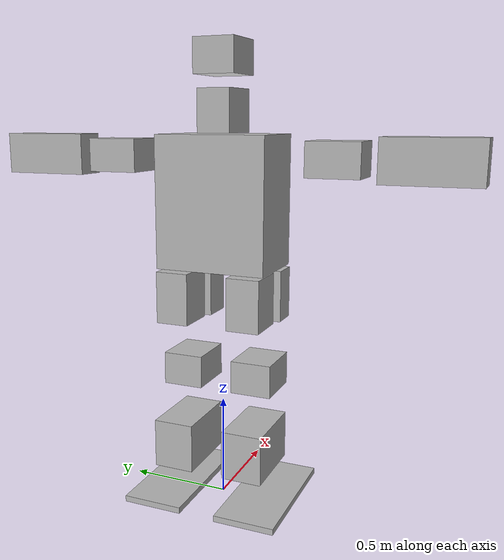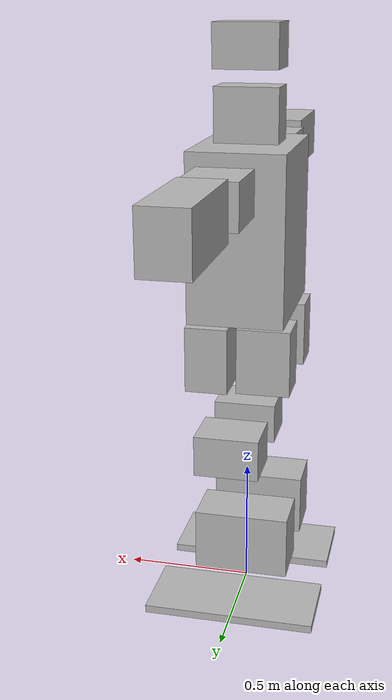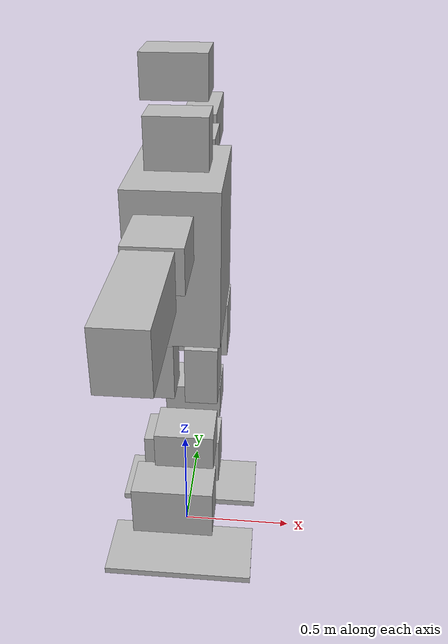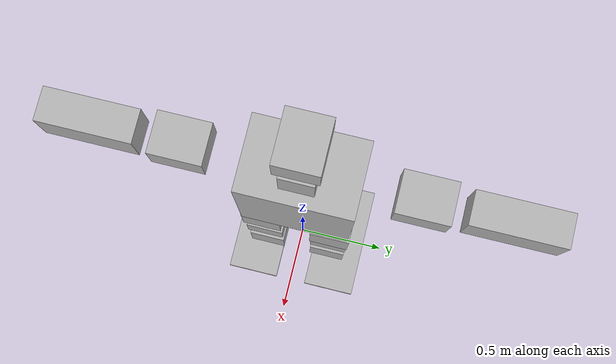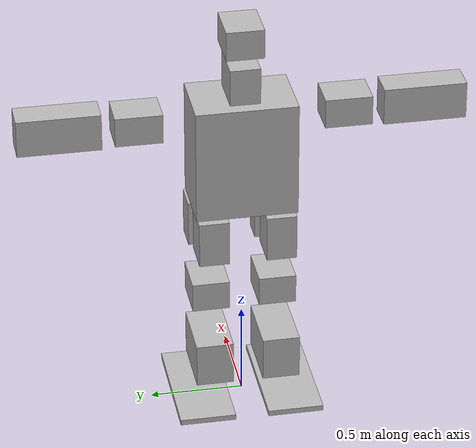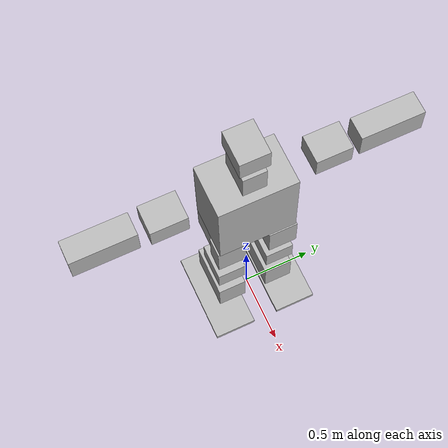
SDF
<?xml version='1.0'?>
<sdf version='1.4'>
	<model name="jimmy">
		<static>false</static>

		<link name="torso">
			<pose>0 0 1.5 0 0 0</pose>
			<self_collide>true</self_collide>
			<!-- Inertia -->
			<inertial>
				<mass>2.0</mass>
				<pose>0 0 -0.3 0 0 0</pose>
				<inertia>
					<ixx>0.08775</ixx>
					<iyy>0.702</iyy>
					<izz>0.11475</izz>
				</inertia>
			</inertial>

			<!-- Collision -->
			<collision name='collision'>
				<pose>0 0 0 0 0 0</pose>
				<geometry>
					<box>
						<size>0.36 0.54 0.63</size>
					</box>
				</geometry>
				<surface>
	            <friction>
	              <ode>
	                <mu>0.5</mu>
	                <mu2>0.2</mu2>
	                <fdir1>1.0 0 0</fdir1>
	                <slip1>0</slip1>
	                <slip2>0</slip2>
	              </ode>
	            </friction>
	            <bounce>
	              <restitution_coefficient>0</restitution_coefficient>
	              <threshold>1000000.0</threshold>
	            </bounce>
	            <contact>
	              <ode>
	                <soft_cfm>0</soft_cfm>
	                <kp>1e15</kp>
	                <kd>1e13</kd>
	                <max_vel>100.0</max_vel>
	                <min_depth>0.0001</min_depth>
	              </ode>
	            </contact>
	          </surface>
			</collision>

			<!-- Parts -->

			<visual name='visual'>
				<pose>0 0 0 0 0 0</pose>
				<geometry>
					<box>
						<size>0.36 0.54 0.63</size>
					</box>
				</geometry>
			</visual>
		</link>

		<!-- Left arm -->
		<link name="left_shoulder_pitch">
			<pose>0 0.35 1.71 0 0 0</pose>
		</link>

		<link name="left_shoulder_roll">
			<pose>0 0.55 1.71 0 0 0</pose>
			<self_collide>true</self_collide>
			<inertial>
				<mass>0.105</mass>
				<pose>0 0 0 0 0 0</pose>
				<inertia>
					<ixx>0.003587501</ixx>
					<iyy>0.001624001</iyy>
					<izz>0.002411501</izz>
				</inertia>
			</inertial>
			<collision name='collision'>
				<pose>0 0 0 0 0 0</pose>
				<geometry>
					<box>
						<size>0.2 0.25 0.16</size>
					</box>
				</geometry>
				<surface>
	            <friction>
	              <ode>
	                <mu>0.5</mu>
	                <mu2>0.2</mu2>
	                <fdir1>1.0 0 0</fdir1>
	                <slip1>0</slip1>
	                <slip2>0</slip2>
	              </ode>
	            </friction>
	            <bounce>
	              <restitution_coefficient>0</restitution_coefficient>
	              <threshold>1000000.0</threshold>
	            </bounce>
	            <contact>
	              <ode>
	                <soft_cfm>0</soft_cfm>
	                <kp>1e15</kp>
	                <kd>1e13</kd>
	                <max_vel>100.0</max_vel>
	                <min_depth>0.0001</min_depth>
	              </ode>
	            </contact>
	          </surface>
			</collision>

			<visual name='visual'>
				<pose>0 0 0 0 0 0</pose>
				<geometry>
					<box>
						<size>0.2 0.25 0.16</size>
					</box>
				</geometry>
			</visual>
		</link>
		<link name="left_elbow">
			<pose>0 0.96 1.71 0 0 0</pose>
			<self_collide>true</self_collide>
			<inertial>
				<mass>0.1</mass>
				<pose>0 -0.2 0 0 0 0</pose>
				<inertia>
					<ixx>0.007175002</ixx>
					<iyy>0.003248002</iyy>
					<izz>0.004823002</izz>
				</inertia>
			</inertial>
			<collision name='collision'>
				<pose>0 0 0 0 0 0</pose>
				<geometry>
					<box>
						<size>0.16 0.44 0.2</size>
					</box>
				</geometry>
				<surface>
	            <friction>
	              <ode>
	                <mu>0.5</mu>
	                <mu2>0.2</mu2>
	                <fdir1>1.0 0 0</fdir1>
	                <slip1>0</slip1>
	                <slip2>0</slip2>
	              </ode>
	            </friction>
	            <bounce>
	              <restitution_coefficient>0</restitution_coefficient>
	              <threshold>1000000.0</threshold>
	            </bounce>
	            <contact>
	              <ode>
	                <soft_cfm>0</soft_cfm>
	                <kp>1e15</kp>
	                <kd>1e13</kd>
	                <max_vel>100.0</max_vel>
	                <min_depth>0.0001</min_depth>
	              </ode>
	            </contact>
	          </surface>
			</collision>
			<visual name='visual'>
				<pose>0 0 0 0 0 0</pose>
				<geometry>
					<box>
						<size>0.16 0.44 0.2</size>
					</box>
				</geometry>
			</visual>
		</link>

		<!-- Right arm -->
		<link name="right_shoulder_pitch">
			<pose>0 -0.35 1.71 0 0 0</pose>
		</link>
		<link name="right_shoulder_roll">
			<pose>0 -0.55 1.71 0 0 0</pose>
			<self_collide>true</self_collide>
			<inertial>
				<mass>0.105</mass>
				<pose>0 0 0 0 0 0</pose>
				<inertia>
					<ixx>0.003587501</ixx>
					<iyy>0.001624001</iyy>
					<izz>0.002411501</izz>
				</inertia>
			</inertial>
			<collision name='collision'>
				<pose>0 0 0 0 0 0</pose>
				<geometry>
					<box>
						<size>0.2 0.25 0.16</size>
					</box>
				</geometry>
				<surface>
	            <friction>
	              <ode>
	                <mu>0.5</mu>
	                <mu2>0.2</mu2>
	                <fdir1>1.0 0 0</fdir1>
	                <slip1>0</slip1>
	                <slip2>0</slip2>
	              </ode>
	            </friction>
	            <bounce>
	              <restitution_coefficient>0</restitution_coefficient>
	              <threshold>1000000.0</threshold>
	            </bounce>
	            <contact>
	              <ode>
	                <soft_cfm>0</soft_cfm>
	                <kp>1e15</kp>
	                <kd>1e13</kd>
	                <max_vel>100.0</max_vel>
	                <min_depth>0.0001</min_depth>
	              </ode>
	            </contact>
	          </surface>
			</collision>
			<visual name='visual'>
				<pose>0 0 0 0 0 0</pose>
				<geometry>
					<box>
						<size>0.2 0.25 0.16</size>
					</box>
				</geometry>
			</visual>
		</link>

		<link name="right_elbow">
			<pose>0 -0.96 1.71 0 0 0</pose>
			<self_collide>true</self_collide>
			<inertial>
				<mass>0.1</mass>
				<pose>0 0.2 0 0 0 0</pose>
				<inertia>
					<ixx>0.007175002</ixx>
					<iyy>0.003248002</iyy>
					<izz>0.004823002</izz>
				</inertia>
			</inertial>
			<collision name='collision'>
				<pose>0 0 0 0 0 0</pose>
				<geometry>
					<box>
						<size>0.16 0.44 0.2</size>
					</box>
				</geometry>
				<surface>
	            <friction>
	              <ode>
	                <mu>0.5</mu>
	                <mu2>0.2</mu2>
	                <fdir1>1.0 0 0</fdir1>
	                <slip1>0</slip1>
	                <slip2>0</slip2>
	              </ode>
	            </friction>
	            <bounce>
	              <restitution_coefficient>0</restitution_coefficient>
	              <threshold>1000000.0</threshold>
	            </bounce>
	            <contact>
	              <ode>
	                <soft_cfm>0</soft_cfm>
	                <kp>1e15</kp>
	                <kd>1e13</kd>
	                <max_vel>100.0</max_vel>
	                <min_depth>0.0001</min_depth>
	              </ode>
	            </contact>
	          </surface>
			</collision>
			<visual name='visual'>
				<pose>0 0 0 0 0 0</pose>
				<geometry>
					<box>
						<size>0.16 0.44 0.2</size>
					</box>
				</geometry>
			</visual>
		</link>
		<link name="right_hip_yaw">
			<pose>0.06 -0.18 1.1 0 0 0</pose>
		</link>
		<link name="right_hip_roll">
			<pose>-0.105 -0.18 1.05 0 0 0</pose>
			<self_collide>true</self_collide>
			<inertial>
				<mass>0.07</mass>
				<pose>0 0 0 0 0 0</pose>
				<inertia>
					<ixx>0.002411501</ixx>
					<iyy>0.001624001</iyy>
					<izz>0.003587501</izz>
				</inertia>
			</inertial>
			<collision name='collision'>
				<pose>0 0 0 0 0 0</pose>
				<geometry>
					<box>
						<size>0.2 0.16 0.25</size>
					</box>
				</geometry>
				<surface>
	            <friction>
	              <ode>
	                <mu>0.5</mu>
	                <mu2>0.2</mu2>
	                <fdir1>1.0 0 0</fdir1>
	                <slip1>0</slip1>
	                <slip2>0</slip2>
	              </ode>
	            </friction>
	            <bounce>
	              <restitution_coefficient>0</restitution_coefficient>
	              <threshold>1000000.0</threshold>
	            </bounce>
	            <contact>
	              <ode>
	                <soft_cfm>0</soft_cfm>
	                <kp>1e15</kp>
	                <kd>1e13</kd>
	                <max_vel>100.0</max_vel>
	                <min_depth>0.0001</min_depth>
	              </ode>
	            </contact>
	          </surface>
			</collision>
			<visual name='visual'>
				<pose>0 0 0 0 0 0</pose>
				<geometry>
					<box>
						<size>0.2 0.16 0.25</size>
					</box>
				</geometry>
			</visual>
		</link>

		<link name="right_hip_pitch">
			<pose>0.105 -0.18 1.05 0 0 0</pose>
			<self_collide>true</self_collide>
			<inertial>
				<mass>0.07</mass>
				<pose>0 0 0 0 0 0</pose>
				<inertia>
					<ixx>0.002411501</ixx>
					<iyy>0.001624001</iyy>
					<izz>0.003587501</izz>
				</inertia>
			</inertial>
			<collision name='collision'>
				<pose>0 0 0 0 0 0</pose>
				<geometry>
					<box>
						<size>0.16 0.2 0.25</size>
					</box>
				</geometry>
				<surface>
	            <friction>
	              <ode>
	                <mu>0.5</mu>
	                <mu2>0.2</mu2>
	                <fdir1>1.0 0 0</fdir1>
	                <slip1>0</slip1>
	                <slip2>0</slip2>
	              </ode>
	            </friction>
	            <bounce>
	              <restitution_coefficient>0</restitution_coefficient>
	              <threshold>1000000.0</threshold>
	            </bounce>
	            <contact>
	              <ode>
	                <soft_cfm>0</soft_cfm>
	                <kp>1e15</kp>
	                <kd>1e13</kd>
	                <max_vel>100.0</max_vel>
	                <min_depth>0.0001</min_depth>
	              </ode>
	            </contact>
	          </surface>
			</collision>
			<visual name='visual'>
				<pose>0 0 0 0 0 0</pose>
				<geometry>
					<box>
						<size>0.13 0.2 0.25</size>
					</box>
				</geometry>
			</visual>
		</link>
		<link name="right_femur">
			<pose>0.09 -0.18 0.86 0 0 0</pose>
			<self_collide>true</self_collide>
			<inertial>
				<mass>0.05</mass>
				<pose>0 0 0 0 0 0</pose>
				<inertia>
					<ixx>0.002411501</ixx>
					<iyy>0.001624001</iyy>
					<izz>0.003587501</izz>
				</inertia>
			</inertial>
		</link>
		<link name="right_knee">
			<pose>0.03 -0.18 0.66 0 0 0</pose>
			<self_collide>true</self_collide>
			<inertial>
				<mass>0.07</mass>
				<pose>0 0 0 0 0 0</pose>
				<inertia>
					<ixx>0.001624001</ixx>
					<iyy>0.002411501</iyy>
					<izz>0.003587501</izz>
				</inertia>
			</inertial>
			<collision name='collision'>
				<pose>0 0 0 0 0 0</pose>
				<geometry>
					<box>
						<size>0.25 0.2 0.13</size>
					</box>
				</geometry>
				<surface>
	            <friction>
	              <ode>
	                <mu>0.5</mu>
	                <mu2>0.2</mu2>
	                <fdir1>1.0 0 0</fdir1>
	                <slip1>0</slip1>
	                <slip2>0</slip2>
	              </ode>
	            </friction>
	            <bounce>
	              <restitution_coefficient>0</restitution_coefficient>
	              <threshold>1000000.0</threshold>
	            </bounce>
	            <contact>
	              <ode>
	                <soft_cfm>0</soft_cfm>
	                <kp>1e15</kp>
	                <kd>1e13</kd>
	                <max_vel>100.0</max_vel>
	                <min_depth>0.0001</min_depth>
	              </ode>
	            </contact>
	          </surface>
			</collision>
			<visual name='visual'>
				<pose>0 0 0 0 0 0</pose>
				<geometry>
					<box>
						<size>0.25 0.2 0.16</size>
					</box>
				</geometry>
			</visual>
		</link>

		<link name="right_ankle_pitch">
			<pose>-0.03 -0.18 0.3 0 0 0</pose>
			<inertial>
				<mass>0.07</mass>
				<pose>0 0 0 0 0 0</pose>
				<inertia>
					<ixx>0.002411501</ixx>
					<iyy>0.001624001</iyy>
					<izz>0.003587501</izz>
				</inertia>
			</inertial>
		</link>
		<link name="right_ankle_roll">
			<pose>-0.03 -0.18 0.3 0 0 0</pose>
			<self_collide>true</self_collide>
			<inertial>
				<mass>0.055</mass>
				<pose>0 0 0 0 0 0</pose>
				<inertia>
					<ixx>0.002411501</ixx>
					<iyy>0.001624001</iyy>
					<izz>0.003587501</izz>
				</inertia>
			</inertial>
			<collision name='collision'>
				<pose>0 0 0 0 0 0</pose>
				<geometry>
					<box>
						<size>0.36 0.2 0.24</size>
					</box>
				</geometry>
				<surface>
	            <friction>
	              <ode>
	                <mu>0.5</mu>
	                <mu2>0.2</mu2>
	                <fdir1>1.0 0 0</fdir1>
	                <slip1>0</slip1>
	                <slip2>0</slip2>
	              </ode>
	            </friction>
	            <bounce>
	              <restitution_coefficient>0</restitution_coefficient>
	              <threshold>1000000.0</threshold>
	            </bounce>
	            <contact>
	              <ode>
	                <soft_cfm>0</soft_cfm>
	                <kp>1e15</kp>
	                <kd>1e13</kd>
	                <max_vel>100.0</max_vel>
	                <min_depth>0.0001</min_depth>
	              </ode>
	            </contact>
	          </surface>
			</collision>
			<visual name='visual'>
				<pose>0 0 0 0 0 0</pose>
				<geometry>
					<box>
						<size>0.36 0.2 0.24</size>
					</box>
				</geometry>
			</visual>
		</link>
		<link name="right_foot">
			<pose>0 -0.24 0.03 0 0 0</pose>
			<self_collide>true</self_collide>
			<inertial>
				<mass>0.05</mass>
				<pose>0 0 0 0 0 0</pose>
				<inertia>
					<ixx>0.00037875</ixx>
					<iyy>0.00219</iyy>
					<izz>0.00181875</izz>
				</inertia>
			</inertial>
			<collision name='collision'>
				<pose>0 0 0 0 0 0</pose>
				<geometry>
					<box>
						<size>0.66 0.3 0.03</size>
					</box>
				</geometry>
				<surface>
	            <friction>
	              <ode>
	                <mu>0.5</mu>
	                <mu2>0.2</mu2>
	                <fdir1>1.0 0 0</fdir1>
	                <slip1>0</slip1>
	                <slip2>0</slip2>
	              </ode>
	            </friction>
	            <bounce>
	              <restitution_coefficient>0</restitution_coefficient>
	              <threshold>1000000.0</threshold>
	            </bounce>
	            <contact>
	              <ode>
	                <soft_cfm>0</soft_cfm>
	                <kp>1e15</kp>
	                <kd>1e13</kd>
	                <max_vel>100.0</max_vel>
	                <min_depth>0.0001</min_depth>
	              </ode>
	            </contact>
	          </surface>
			</collision>
			<visual name='visual'>
				<pose>0 0 0 0 0 0</pose>
				<geometry>
					<box>
						<size>0.66 0.3 0.03</size>
					</box>
				</geometry>
			</visual>
		</link>

		<link name="left_hip_yaw">
			<pose>0.06 0.18 1.1 0 0 0</pose>
		</link>
		<link name="left_hip_roll">
			<pose>-0.105 0.18 1.05 0 0 0</pose>
			<self_collide>true</self_collide>
			<inertial>
				<mass>0.07</mass>
				<pose>0 0 0 0 0 0</pose>
				<inertia>
					<ixx>0.002411501</ixx>
					<iyy>0.001624001</iyy>
					<izz>0.003587501</izz>
				</inertia>
			</inertial>
			<collision name='collision'>
				<pose>0 0 0 0 0 0</pose>
				<geometry>
					<box>
						<size>0.2 0.16 0.25</size>
					</box>
				</geometry>
				<surface>
	            <friction>
	              <ode>
	                <mu>0.5</mu>
	                <mu2>0.2</mu2>
	                <fdir1>1.0 0 0</fdir1>
	                <slip1>0</slip1>
	                <slip2>0</slip2>
	              </ode>
	            </friction>
	            <bounce>
	              <restitution_coefficient>0</restitution_coefficient>
	              <threshold>1000000.0</threshold>
	            </bounce>
	            <contact>
	              <ode>
	                <soft_cfm>0</soft_cfm>
	                <kp>1e15</kp>
	                <kd>1e13</kd>
	                <max_vel>100.0</max_vel>
	                <min_depth>0.0001</min_depth>
	              </ode>
	            </contact>
	          </surface>
			</collision>
			<visual name='visual'>
				<pose>0 0 0 0 0 0</pose>
				<geometry>
					<box>
						<size>0.2 0.16 0.25</size>
					</box>
				</geometry>
			</visual>
		</link>

		<link name="left_hip_pitch">
			<pose>0.105 0.18 1.05 0 0 0</pose>
			<self_collide>true</self_collide>
			<inertial>
				<mass>0.07</mass>
				<pose>0 0 0 0 0 0</pose>
				<inertia>
					<ixx>0.002411501</ixx>
					<iyy>0.001624001</iyy>
					<izz>0.003587501</izz>
				</inertia>
			</inertial>
			<collision name='collision'>
				<pose>0 0 0 0 0 0</pose>
				<geometry>
					<box>
						<size>0.16 0.2 0.25</size>
					</box>
				</geometry>
				<surface>
	            <friction>
	              <ode>
	                <mu>0.5</mu>
	                <mu2>0.2</mu2>
	                <fdir1>1.0 0 0</fdir1>
	                <slip1>0</slip1>
	                <slip2>0</slip2>
	              </ode>
	            </friction>
	            <bounce>
	              <restitution_coefficient>0</restitution_coefficient>
	              <threshold>1000000.0</threshold>
	            </bounce>
	            <contact>
	              <ode>
	                <soft_cfm>0</soft_cfm>
	                <kp>1e15</kp>
	                <kd>1e13</kd>
	                <max_vel>100.0</max_vel>
	                <min_depth>0.0001</min_depth>
	              </ode>
	            </contact>
	          </surface>
			</collision>
			<visual name='visual'>
				<pose>0 0 0 0 0 0</pose>
				<geometry>
					<box>
						<size>0.16 0.2 0.25</size>
					</box>
				</geometry>
			</visual>
		</link>
		<link name="left_femur">
			<pose>0.09 0.18 0.86 0 0 0</pose>
			<self_collide>true</self_collide>
			<inertial>
				<mass>0.05</mass>
				<pose>0 0 0 0 0 0</pose>
				<inertia>
					<ixx>0.002411501</ixx>
					<iyy>0.001624001</iyy>
					<izz>0.003587501</izz>
				</inertia>
			</inertial>
		</link>
		<link name="left_knee">
			<pose>0.03 0.18 0.66 0 0 0</pose>
			<self_collide>true</self_collide>
			<inertial>
				<mass>0.07</mass>
				<pose>0 0 0 0 0 0</pose>
				<inertia>
					<ixx>0.001624001</ixx>
					<iyy>0.002411501</iyy>
					<izz>0.003587501</izz>
				</inertia>
			</inertial>
			<collision name='collision'>
				<pose>0 0 0 0 0 0</pose>
				<geometry>
					<box>
						<size>0.25 0.2 0.16</size>
					</box>
				</geometry>
				<surface>
	            <friction>
	              <ode>
	                <mu>0.5</mu>
	                <mu2>0.2</mu2>
	                <fdir1>1.0 0 0</fdir1>
	                <slip1>0</slip1>
	                <slip2>0</slip2>
	              </ode>
	            </friction>
	            <bounce>
	              <restitution_coefficient>0</restitution_coefficient>
	              <threshold>1000000.0</threshold>
	            </bounce>
	            <contact>
	              <ode>
	                <soft_cfm>0</soft_cfm>
	                <kp>1e15</kp>
	                <kd>1e13</kd>
	                <max_vel>100.0</max_vel>
	                <min_depth>0.0001</min_depth>
	              </ode>
	            </contact>
	          </surface>
			</collision>
			<visual name='visual'>
				<pose>0 0 0 0 0 0</pose>
				<geometry>
					<box>
						<size>0.25 0.2 0.16</size>
					</box>
				</geometry>
			</visual>
		</link>

		<link name="left_ankle_pitch">
			<pose>-0.03 0.18 0.3 0 0 0</pose>
			<inertial>
				<mass>0.07</mass>
				<pose>0 0 0 0 0 0</pose>
				<inertia>
					<ixx>0.002411501</ixx>
					<iyy>0.001624001</iyy>
					<izz>0.003587501</izz>
				</inertia>
			</inertial>
		</link>
		<link name="left_ankle_roll">
			<pose>-0.03 0.18 0.3 0 0 0</pose>
			<self_collide>true</self_collide>
			<inertial>
				<mass>0.07</mass>
				<pose>0 0 0 0 0 0</pose>
				<inertia>
					<ixx>0.002411501</ixx>
					<iyy>0.001624001</iyy>
					<izz>0.003587501</izz>
				</inertia>
			</inertial>
			<collision name='collision'>
				<pose>0 0 0 0 0 0</pose>
				<geometry>
					<box>
						<size>0.36 0.2 0.24</size>
					</box>
				</geometry>
				<surface>
	            <friction>
	              <ode>
	                <mu>0.5</mu>
	                <mu2>0.2</mu2>
	                <fdir1>1.0 0 0</fdir1>
	                <slip1>0</slip1>
	                <slip2>0</slip2>
	              </ode>
	            </friction>
	            <bounce>
	              <restitution_coefficient>0</restitution_coefficient>
	              <threshold>1000000.0</threshold>
	            </bounce>
	            <contact>
	              <ode>
	                <soft_cfm>0</soft_cfm>
	                <kp>1e15</kp>
	                <kd>1e13</kd>
	                <max_vel>100.0</max_vel>
	                <min_depth>0.0001</min_depth>
	              </ode>
	            </contact>
	          </surface>
			</collision>
			<visual name='visual'>
				<pose>0 0 0 0 0 0</pose>
				<geometry>
					<box>
						<size>0.36 0.2 0.24</size>
					</box>
				</geometry>
			</visual>
		</link>

		<link name="left_foot">
			<pose>0 0.24 0.03 0 0 0</pose>
			<self_collide>true</self_collide>
			<inertial>
				<mass>0.05</mass>
				<pose>0 0 0 0 0 0</pose>
				<inertia>
					<ixx>0.00037875</ixx>
					<iyy>0.00219</iyy>
					<izz>0.00181875</izz>
				</inertia>
			</inertial>
			<collision name='collision'>
				<pose>0 0 0 0 0 0</pose>
				<geometry>
					<box>
						<size>0.66 0.3 0.03</size>
					</box>
				</geometry>
				<surface>
	            <friction>
	              <ode>
	                <mu>0.5</mu>
	                <mu2>0.2</mu2>
	                <fdir1>1.0 0 0</fdir1>
	                <slip1>0</slip1>
	                <slip2>0</slip2>
	              </ode>
	            </friction>
	            <bounce>
	              <restitution_coefficient>0</restitution_coefficient>
	              <threshold>1000000.0</threshold>
	            </bounce>
	            <contact>
	              <ode>
	                <soft_cfm>0</soft_cfm>
	                <kp>1e15</kp>
	                <kd>1e13</kd>
	                <max_vel>100.0</max_vel>
	                <min_depth>0.0001</min_depth>
	              </ode>
	            </contact>
	          </surface>
			</collision>
			<visual name='visual'>
				<pose>0 0 0 0 0 0</pose>
				<geometry>
					<box>
						<size>0.66 0.3 0.03</size>
					</box>
				</geometry>
			</visual>
		</link>

		<!-- head/face -->
		<link name="neck_yaw">
			<pose>0 0 1.92 0 0 0</pose>
			<self_collide>true</self_collide>
			<inertial>
				<mass>5.0</mass>
				<pose>0 0 0 0 0 0</pose>
				<inertia>
					<ixx>0.5</ixx>
					<iyy>1.0</iyy>
					<izz>0.1</izz>
				</inertia>
			</inertial>
			<collision name='collision'>
				<pose>0 0 0 0 0 0</pose>
				<geometry>
					<box>
						<size>0.24 0.16 0.2</size>
					</box>
				</geometry>
				<surface>
	            <friction>
	              <ode>
	                <mu>0.5</mu>
	                <mu2>0.2</mu2>
	                <fdir1>1.0 0 0</fdir1>
	                <slip1>0</slip1>
	                <slip2>0</slip2>
	              </ode>
	            </friction>
	            <bounce>
	              <restitution_coefficient>0</restitution_coefficient>
	              <threshold>1000000.0</threshold>
	            </bounce>
	            <contact>
	              <ode>
	                <soft_cfm>0</soft_cfm>
	                <kp>1e15</kp>
	                <kd>1e13</kd>
	                <max_vel>100.0</max_vel>
	                <min_depth>0.0001</min_depth>
	              </ode>
	            </contact>
	          </surface>
			</collision>
			<visual name='visual'>
				<pose>0 0 0 0 0 0</pose>
				<geometry>
					<box>
						<size>0.24 0.16 0.2</size>
					</box>
				</geometry>
			</visual>
		</link>
		<link name="neck_pitch">
			<pose>0 0 2.16 0 0 0</pose>
			<self_collide>true</self_collide>
			<inertial>
				<mass>1.0</mass>
				<pose>0 0 0 0 0 0</pose>
				<inertia>
					<ixx>0.5</ixx>
					<iyy>1.0</iyy>
					<izz>0.1</izz>
				</inertia>
			</inertial>
			<collision name='collision'>
				<pose>0 0 0 0 0 0</pose>
				<geometry>
					<box>
						<size>0.24 0.2 0.16</size>
					</box>
				</geometry>
				<surface>
	            <friction>
	              <ode>
	                <mu>0.5</mu>
	                <mu2>0.2</mu2>
	                <fdir1>1.0 0 0</fdir1>
	                <slip1>0</slip1>
	                <slip2>0</slip2>
	              </ode>
	            </friction>
	            <bounce>
	              <restitution_coefficient>0</restitution_coefficient>
	              <threshold>1000000.0</threshold>
	            </bounce>
	            <contact>
	              <ode>
	                <soft_cfm>0</soft_cfm>
	                <kp>1e15</kp>
	                <kd>1e13</kd>
	                <max_vel>100.0</max_vel>
	                <min_depth>0.0001</min_depth>
	              </ode>
	            </contact>
	          </surface>
			</collision>
			<visual name='visual'>
				<pose>0 0 0 0 0 0</pose>
				<geometry>
					<box>
						<size>0.24 0.2 0.16</size>
					</box>
				</geometry>
			</visual>
		</link>

		<!-- JOINTS -->

		<joint type="revolute" name="right_shoulder_pitch_1">
			<pose>0 0.28 0 0 0 0</pose>
			<child>right_shoulder_pitch</child>
			<parent>torso</parent>
			<axis>
				<xyz>0 1 0</xyz>
			</axis>
		</joint>

		<joint type="revolute" name="left_shoulder_pitch_2">
			<pose>0 -0.28 0 0 0 0</pose>
			<child>left_shoulder_pitch</child>
			<parent>torso</parent>
			<axis>
				<xyz>0 1 0</xyz>
			</axis>
		</joint>

		<joint type="revolute" name="right_shoulder_roll_3">
			<pose>0 0.08 0 0 0 0</pose>
			<child>right_shoulder_roll</child>
			<parent>right_shoulder_pitch</parent>
			<axis>
				<xyz>1 0 0</xyz>
			</axis>
		</joint>

		<joint type="revolute" name="left_shoulder_roll_4">
			<pose>0 -0.08 0 0 0 0</pose>
			<child>left_shoulder_roll</child>
			<parent>left_shoulder_pitch</parent>
			<axis>
				<xyz>1 0 0</xyz>
			</axis>
		</joint>

		<joint type="revolute" name="right_elbow_5">
			<pose>0 0.14 0 0 0 0</pose>
			<child>right_elbow</child>
			<parent>right_shoulder_roll</parent>
			<axis>
				<xyz>0 0 1</xyz>
			</axis>
		</joint>

		<joint type="revolute" name="left_elbow_6">
			<pose>0 -0.14 0 0 0 0</pose>
			<child>left_elbow</child>
			<parent>left_shoulder_roll</parent>
			<axis>
				<xyz>0 0 1</xyz>
			</axis>
		</joint>

		<joint type="revolute" name="right_hip_yaw_7">
			<pose>0 0 0 0 0 0</pose>
			<child>right_hip_yaw</child>
			<parent>torso</parent>
			<axis>
				<dynamics>
		          <damping>1.000000</damping>
		          <friction>1.000000</friction>
		        </dynamics>
				<xyz>0 0 1</xyz>
			</axis>
		</joint>

		<joint type="revolute" name="left_hip_yaw_8">
			<pose>0 0 0 0 0 0</pose>
			<child>left_hip_yaw</child>
			<parent>torso</parent>
			<axis>
				<dynamics>
		          <damping>1.000000</damping>
		          <friction>1.000000</friction>
		        </dynamics>
				<xyz>0 0 1</xyz>
			</axis>
		</joint>

		<joint type="revolute" name="right_hip_roll_9">
			<pose>0 0 0.06 0 0 0</pose>
			<child>right_hip_roll</child>
			<parent>right_hip_yaw</parent>
			<axis>
				<xyz>1 0 0</xyz>
			</axis>
		</joint>

		<joint type="revolute" name="left_hip_roll_10">
			<pose>0 0 0.06 0 0 0</pose>
			<child>left_hip_roll</child>
			<parent>left_hip_yaw</parent>
			<axis>
				<xyz>1 0 0</xyz>
			</axis>
		</joint>
		<!-- combined yaw & roll -->
		<!-- maybe join yaw & roll into one joint? -->

		<joint type="revolute" name="right_hip_joints">
			<pose>0 0 0 0 0 0</pose>
			<child>right_hip_pitch</child>
			<parent>right_hip_roll</parent>
			<axis>
				<xyz>1 0 0</xyz>
				<limit>
					<upper>0</upper>
					<lower>0</lower>
				</limit>
			</axis>
		</joint>
		<joint type="revolute" name="left_hip_joints">
			<pose>0 0 0 0 0 0</pose>
			<child>left_hip_pitch</child>
			<parent>left_hip_roll</parent>
			<axis>
				<xyz>1 0 0</xyz>
				<limit>
					<upper>0</upper>
					<lower>0</lower>
				</limit>
			</axis>
		</joint>

		<joint type="revolute" name="right_hip_pitch_11">
			<pose>0.01 0 0.26 0 0 0</pose>
			<child>right_femur</child>
			<parent>right_hip_pitch</parent>
			<axis>
				<dynamics>
		          <damping>1.000000</damping>
		          <friction>1.000000</friction>
		        </dynamics>
				<xyz>0 1 0</xyz>
			</axis>
		</joint>

		<joint type="revolute" name="left_hip_pitch_12">
			<pose>0.01 0 0.26 0 0 0</pose>
			<child>left_femur</child>
			<parent>left_hip_pitch</parent>
			<axis>
				<dynamics>
		          <damping>1.000000</damping>
		          <friction>1.000000</friction>
		        </dynamics>
		        <limit>
					<upper>1</upper>
					<lower>0</lower>
				</limit>
				<xyz>0 1 0</xyz>
			</axis>
		</joint>

		<joint type="revolute" name="right_femur_joints">
			<pose>0 0 0 0 0 0</pose>
			<child>right_knee</child>
			<parent>right_femur</parent>
			<axis>
				<xyz>0 0 1</xyz>
				<limit>
					<upper>0</upper>
					<lower>0</lower>
				</limit>
			</axis>
		</joint>
		<joint type="revolute" name="left_femur_joints">
			<pose>0 0 0 0 0 0</pose>
			<child>left_knee</child>
			<parent>left_femur</parent>
			<axis>
				<xyz>0 0 1</xyz>
				<limit>
					<upper>0</upper>
					<lower>0</lower>
				</limit>
			</axis>
		</joint>
		<joint type="revolute" name="right_knee_13">
			<pose>0 0 0.365 0 0 0</pose>
			<child>right_ankle_pitch</child>
			<parent>right_knee</parent>
			<axis>
				<dynamics>
		          <damping>1.000000</damping>
		          <friction>1.000000</friction>
		        </dynamics>
				<xyz>0 1 0</xyz>
			</axis>
		</joint>

		<joint type="revolute" name="left_knee_14">
			<pose>0 0 0.365 0 0 0</pose>
			<child>left_ankle_pitch</child>
			<parent>left_knee</parent>
			<axis>
				<dynamics>
		          <damping>1.000000</damping>
		          <friction>1.000000</friction>
		        </dynamics>
				<xyz>0 1 0</xyz>
			</axis>
		</joint>
		<joint type="revolute" name="right_ankle_pitch_15">
			<pose>0.08 0 0.23 0 0 0</pose>
			<child>right_ankle_roll</child>
			<parent>right_ankle_pitch</parent>
			<axis>
				<dynamics>
		          <damping>1.000000</damping>
		          <friction>1.000000</friction>
		        </dynamics>
		        <limit>
					<upper>1</upper>
					<lower>0</lower>
				</limit>
				<xyz>0 1 0</xyz>
			</axis>
		</joint>

		<joint type="revolute" name="left_ankle_pitch_16">
			<pose>0.08 0 0.23 0 0 0</pose>
			<child>left_ankle_roll</child>
			<parent>left_ankle_pitch</parent>
			<axis>
				<dynamics>
		          <damping>1.000000</damping>
		          <friction>1.000000</friction>
		        </dynamics>
		        <limit>
					<upper>1</upper>
					<lower>0</lower>
				</limit>
				<xyz>0 1 0</xyz>
			</axis>
		</joint>
		<joint type="revolute" name="right_ankle_roll_17">
			<pose>0.08 0.06 0.23 0 0 0</pose>
			<child>right_foot</child>
			<parent>right_ankle_roll</parent>
			<axis>
				<dynamics>
		          <damping>1.000000</damping>
		          <friction>1.000000</friction>
		        </dynamics>
				<xyz>1 0 0</xyz>
			</axis>
		</joint>

		<joint type="revolute" name="left_ankle_roll_18">
			<pose>0.08 -0.06 0.23 0 0 0</pose>
			<child>left_foot</child>
			<parent>left_ankle_roll</parent>
			<axis>
				<dynamics>
		          <damping>1.000000</damping>
		          <friction>1.000000</friction>
		        </dynamics>
				<xyz>1 0 0</xyz>
			</axis>
		</joint>

		<joint type="revolute" name="neck_yaw_19">
			<pose>0.08 0 0 0 0 0</pose>
			<child>neck_yaw</child>
			<parent>torso</parent>
			<axis>
				<xyz>0 0 1</xyz>
			</axis>
		</joint>

		<joint type="revolute" name="neck_pitch_20">
			<pose>0.08 0 0 0 0 0</pose>
			<child>neck_pitch</child>
			<parent>neck_yaw</parent>
			<axis>
				<xyz>0 1 0</xyz>
			</axis>
		</joint>

		<!-- END of left shoulder joints -->

		<!-- Right shoulder joints -->
		<!-- END of right shoulder joints -->

		<!-- NECK JOINT -->

	</model>
</sdf>
